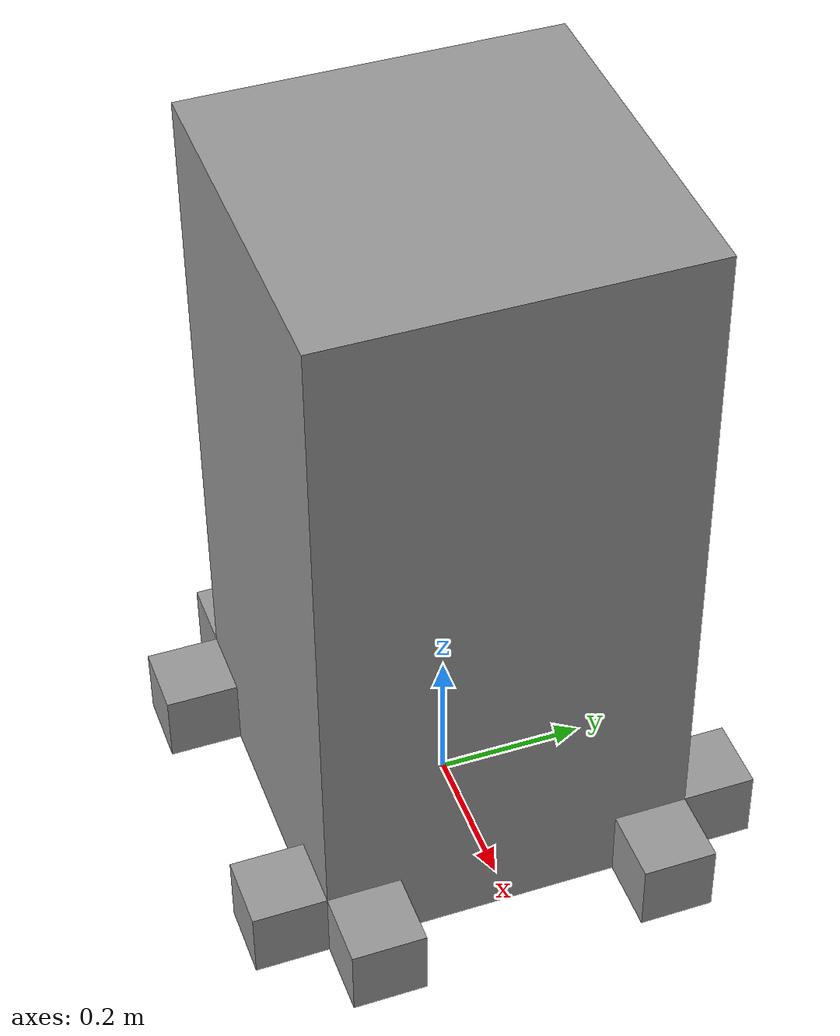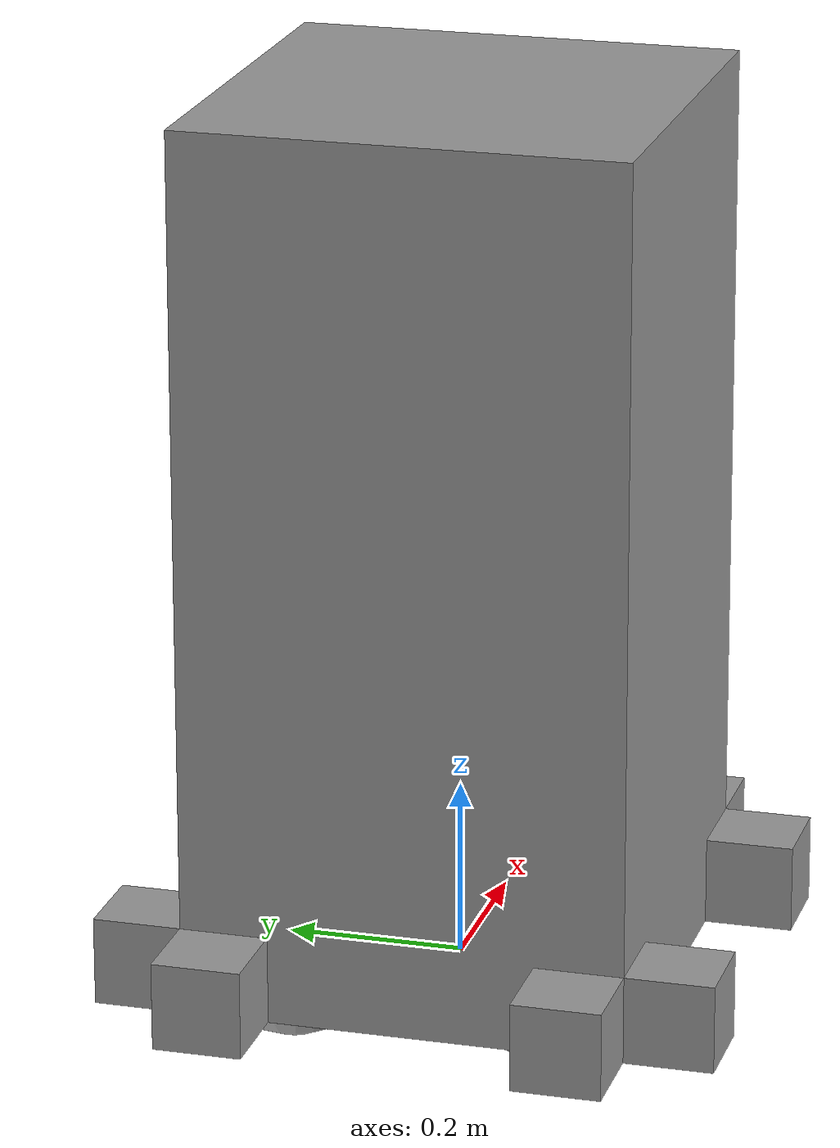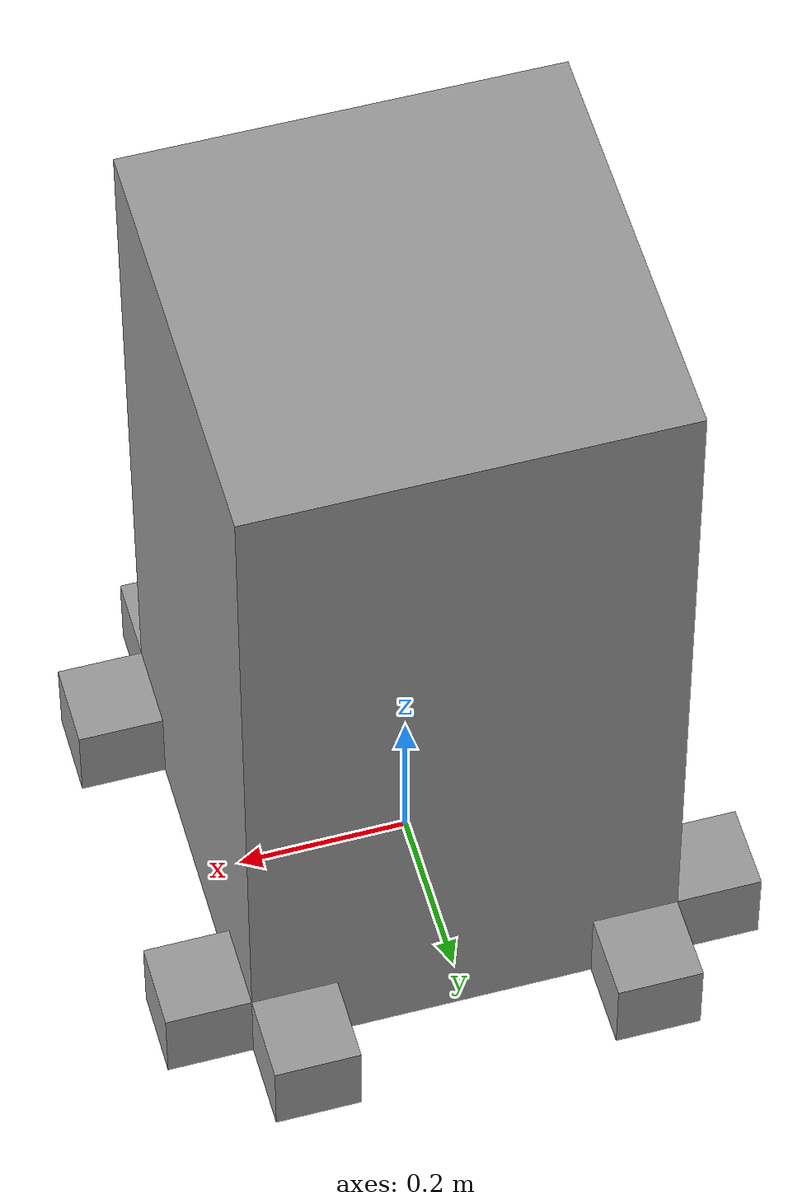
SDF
<?xml version='1.0'?>
<sdf version='1.6'>
  <model name='RSS_Debris'>
    <link name='link_0'>
      <inertial>
        <mass>0.35</mass>
        <inertia>
          <ixx>0.0364583</ixx>
          <ixy>0</ixy>
          <ixz>0</ixz>
          <iyy>0.0364583</iyy>
          <iyz>0</iyz>
          <izz>0.0145833</izz>
        </inertia>
        <pose frame=''>0 0 0 0 -0 0</pose>
      </inertial>
      <pose frame=''>1e-06 -0 0.4 0 -0 0</pose>
      <gravity>1</gravity>
      <self_collide>1</self_collide>
      <kinematic>0</kinematic>
      <enable_wind>0</enable_wind>
      <visual name='visual'>
        <pose frame=''>0 0 0.1 0 -0 0</pose>
        <geometry>
          <box>
            <size>0.5 0.5 1</size>
          </box>
        </geometry>
        <material>
          <lighting>1</lighting>
          <script>
            <uri>file://media/materials/scripts/gazebo.material</uri>
            <name>Gazebo/Grey</name>
          </script>
          <shader type='pixel'>
            <normal_map>__default__</normal_map>
          </shader>
          <ambient>0.3 0.3 0.3 1</ambient>
          <diffuse>0.7 0.7 0.7 1</diffuse>
          <specular>0.01 0.01 0.01 1</specular>
          <emissive>0 0 0 1</emissive>
        </material>
        <transparency>0</transparency>
        <cast_shadows>1</cast_shadows>
      </visual>
      <collision name='collision'>
        <laser_retro>0</laser_retro>
        <max_contacts>10</max_contacts>
        <pose frame=''>0 0 0.1 0 -0 0</pose>
        <geometry>
          <box>
            <size>0.5 0.5 1</size>
          </box>
        </geometry>
        <surface>
          <friction>
            <ode>
              <mu>0</mu>
              <mu2>0</mu2>
              <fdir1>0 0 0</fdir1>
              <slip1>0</slip1>
              <slip2>0</slip2>
            </ode>
            <torsional>
              <coefficient>0.98</coefficient>
              <patch_radius>0</patch_radius>
              <surface_radius>0</surface_radius>
              <use_patch_radius>1</use_patch_radius>
              <ode>
                <slip>0</slip>
              </ode>
            </torsional>
          </friction>
          <bounce>
            <restitution_coefficient>0</restitution_coefficient>
            <threshold>1e+06</threshold>
          </bounce>
          <contact>
            <collide_without_contact>0</collide_without_contact>
            <collide_without_contact_bitmask>1</collide_without_contact_bitmask>
            <collide_bitmask>1</collide_bitmask>
            <ode>
              <soft_cfm>0</soft_cfm>
              <soft_erp>0.2</soft_erp>
              <kp>1e+13</kp>
              <kd>1</kd>
              <max_vel>0.01</max_vel>
              <min_depth>0</min_depth>
            </ode>
            <bullet>
              <split_impulse>1</split_impulse>
              <split_impulse_penetration_threshold>-0.01</split_impulse_penetration_threshold>
              <soft_cfm>0</soft_cfm>
              <soft_erp>0.2</soft_erp>
              <kp>1e+13</kp>
              <kd>1</kd>
            </bullet>
          </contact>
        </surface>
      </collision>
    </link>
    <link name='link_0_0'>
      <inertial>
        <mass>0.35</mass>
        <inertia>
          <ixx>0.0014</ixx>
          <ixy>0</ixy>
          <ixz>0</ixz>
          <iyy>0.0014</iyy>
          <iyz>0</iyz>
          <izz>0.0014</izz>
        </inertia>
        <pose frame=''>0 0 0 0 -0 0</pose>
      </inertial>
      <pose frame=''>-0.150008 -0.150038 0.05 -0 -1e-06 9.3e-05</pose>
      <gravity>1</gravity>
      <self_collide>0</self_collide>
      <kinematic>0</kinematic>
      <enable_wind>0</enable_wind>
      <visual name='visual'>
        <pose frame=''>0 0 0 0 -0 0</pose>
        <geometry>
          <sphere>
            <radius>0.1</radius>
          </sphere>
        </geometry>
        <material>
          <lighting>1</lighting>
          <script>
            <uri>file://media/materials/scripts/gazebo.material</uri>
            <name>Gazebo/Grey</name>
          </script>
          <shader type='pixel'>
            <normal_map>__default__</normal_map>
          </shader>
          <ambient>0.3 0.3 0.3 1</ambient>
          <diffuse>0.7 0.7 0.7 1</diffuse>
          <specular>0.01 0.01 0.01 1</specular>
          <emissive>0 0 0 1</emissive>
        </material>
        <transparency>0</transparency>
        <cast_shadows>1</cast_shadows>
      </visual>
      <collision name='collision'>
        <laser_retro>0</laser_retro>
        <max_contacts>10</max_contacts>
        <pose frame=''>0 0 0 0 -0 0</pose>
        <geometry>
          <sphere>
            <radius>0.1</radius>
          </sphere>
        </geometry>
        <surface>
          <friction>
            <ode>
              <mu>1</mu>
              <mu2>1</mu2>
              <fdir1>0 0 0</fdir1>
              <slip1>0</slip1>
              <slip2>0</slip2>
            </ode>
            <torsional>
              <coefficient>1</coefficient>
              <patch_radius>0</patch_radius>
              <surface_radius>0</surface_radius>
              <use_patch_radius>1</use_patch_radius>
              <ode>
                <slip>0</slip>
              </ode>
            </torsional>
          </friction>
          <bounce>
            <restitution_coefficient>0</restitution_coefficient>
            <threshold>1e+06</threshold>
          </bounce>
          <contact>
            <collide_without_contact>0</collide_without_contact>
            <collide_without_contact_bitmask>1</collide_without_contact_bitmask>
            <collide_bitmask>1</collide_bitmask>
            <ode>
              <soft_cfm>0</soft_cfm>
              <soft_erp>0.2</soft_erp>
              <kp>1e+13</kp>
              <kd>1</kd>
              <max_vel>0.01</max_vel>
              <min_depth>0</min_depth>
            </ode>
            <bullet>
              <split_impulse>1</split_impulse>
              <split_impulse_penetration_threshold>-0.01</split_impulse_penetration_threshold>
              <soft_cfm>0</soft_cfm>
              <soft_erp>0.2</soft_erp>
              <kp>1e+13</kp>
              <kd>1</kd>
            </bullet>
          </contact>
        </surface>
      </collision>
    </link>
    <link name='link_0_0_clone'>
      <inertial>
        <mass>0.35</mass>
        <inertia>
          <ixx>0.0014</ixx>
          <ixy>0</ixy>
          <ixz>0</ixz>
          <iyy>0.0014</iyy>
          <iyz>0</iyz>
          <izz>0.0014</izz>
        </inertia>
        <pose frame=''>0 0 0 0 -0 0</pose>
      </inertial>
      <pose frame=''>-0.150027 0.15 0.05 -0 -2e-06 0.000186</pose>
      <gravity>1</gravity>
      <self_collide>0</self_collide>
      <kinematic>0</kinematic>
      <enable_wind>0</enable_wind>
      <visual name='visual_0'>
        <pose frame=''>0 0 0 0 -0 0</pose>
        <geometry>
          <sphere>
            <radius>0.1</radius>
          </sphere>
        </geometry>
        <material>
          <lighting>1</lighting>
          <script>
            <uri>file://media/materials/scripts/gazebo.material</uri>
            <name>Gazebo/Grey</name>
          </script>
          <shader type='pixel'>
            <normal_map>__default__</normal_map>
          </shader>
          <ambient>0.3 0.3 0.3 1</ambient>
          <diffuse>0.7 0.7 0.7 1</diffuse>
          <specular>0.01 0.01 0.01 1</specular>
          <emissive>0 0 0 1</emissive>
        </material>
        <transparency>0</transparency>
        <cast_shadows>1</cast_shadows>
      </visual>
      <collision name='collision'>
        <laser_retro>0</laser_retro>
        <max_contacts>10</max_contacts>
        <pose frame=''>0 0 0 0 -0 0</pose>
        <geometry>
          <sphere>
            <radius>0.1</radius>
          </sphere>
        </geometry>
        <surface>
          <friction>
            <ode>
              <mu>1</mu>
              <mu2>1</mu2>
              <fdir1>0 0 0</fdir1>
              <slip1>0</slip1>
              <slip2>0</slip2>
            </ode>
            <torsional>
              <coefficient>1</coefficient>
              <patch_radius>0</patch_radius>
              <surface_radius>0</surface_radius>
              <use_patch_radius>1</use_patch_radius>
              <ode>
                <slip>0</slip>
              </ode>
            </torsional>
          </friction>
          <bounce>
            <restitution_coefficient>0</restitution_coefficient>
            <threshold>1e+06</threshold>
          </bounce>
          <contact>
            <collide_without_contact>0</collide_without_contact>
            <collide_without_contact_bitmask>1</collide_without_contact_bitmask>
            <collide_bitmask>1</collide_bitmask>
            <ode>
              <soft_cfm>0</soft_cfm>
              <soft_erp>0.2</soft_erp>
              <kp>1e+13</kp>
              <kd>1</kd>
              <max_vel>0.01</max_vel>
              <min_depth>0</min_depth>
            </ode>
            <bullet>
              <split_impulse>1</split_impulse>
              <split_impulse_penetration_threshold>-0.01</split_impulse_penetration_threshold>
              <soft_cfm>0</soft_cfm>
              <soft_erp>0.2</soft_erp>
              <kp>1e+13</kp>
              <kd>1</kd>
            </bullet>
          </contact>
        </surface>
      </collision>
    </link>
    <link name='link_0_0_clone_0'>
      <inertial>
        <mass>0.35</mass>
        <inertia>
          <ixx>0.0014</ixx>
          <ixy>0</ixy>
          <ixz>0</ixz>
          <iyy>0.0014</iyy>
          <iyz>0</iyz>
          <izz>0.0014</izz>
        </inertia>
        <pose frame=''>0 0 0 0 -0 0</pose>
      </inertial>
      <pose frame=''>0.15003 -0.15 0.05 -0 -2e-06 0.000186</pose>
      <gravity>1</gravity>
      <self_collide>0</self_collide>
      <kinematic>0</kinematic>
      <enable_wind>0</enable_wind>
      <visual name='visual_0'>
        <pose frame=''>0 0 0 0 -0 0</pose>
        <geometry>
          <sphere>
            <radius>0.1</radius>
          </sphere>
        </geometry>
        <material>
          <lighting>1</lighting>
          <script>
            <uri>file://media/materials/scripts/gazebo.material</uri>
            <name>Gazebo/Grey</name>
          </script>
          <shader type='pixel'>
            <normal_map>__default__</normal_map>
          </shader>
          <ambient>0.3 0.3 0.3 1</ambient>
          <diffuse>0.7 0.7 0.7 1</diffuse>
          <specular>0.01 0.01 0.01 1</specular>
          <emissive>0 0 0 1</emissive>
        </material>
        <transparency>0</transparency>
        <cast_shadows>1</cast_shadows>
      </visual>
      <collision name='collision'>
        <laser_retro>0</laser_retro>
        <max_contacts>10</max_contacts>
        <pose frame=''>0 0 0 0 -0 0</pose>
        <geometry>
          <sphere>
            <radius>0.1</radius>
          </sphere>
        </geometry>
        <surface>
          <friction>
            <ode>
              <mu>1</mu>
              <mu2>1</mu2>
              <fdir1>0 0 0</fdir1>
              <slip1>0</slip1>
              <slip2>0</slip2>
            </ode>
            <torsional>
              <coefficient>1</coefficient>
              <patch_radius>0</patch_radius>
              <surface_radius>0</surface_radius>
              <use_patch_radius>1</use_patch_radius>
              <ode>
                <slip>0</slip>
              </ode>
            </torsional>
          </friction>
          <bounce>
            <restitution_coefficient>0</restitution_coefficient>
            <threshold>1e+06</threshold>
          </bounce>
          <contact>
            <collide_without_contact>0</collide_without_contact>
            <collide_without_contact_bitmask>1</collide_without_contact_bitmask>
            <collide_bitmask>1</collide_bitmask>
            <ode>
              <soft_cfm>0</soft_cfm>
              <soft_erp>0.2</soft_erp>
              <kp>1e+13</kp>
              <kd>1</kd>
              <max_vel>0.01</max_vel>
              <min_depth>0</min_depth>
            </ode>
            <bullet>
              <split_impulse>1</split_impulse>
              <split_impulse_penetration_threshold>-0.01</split_impulse_penetration_threshold>
              <soft_cfm>0</soft_cfm>
              <soft_erp>0.2</soft_erp>
              <kp>1e+13</kp>
              <kd>1</kd>
            </bullet>
          </contact>
        </surface>
      </collision>
    </link>
    <link name='link_0_0_clone_1'>
      <inertial>
        <mass>0.35</mass>
        <inertia>
          <ixx>0.0014</ixx>
          <ixy>0</ixy>
          <ixz>0</ixz>
          <iyy>0.0014</iyy>
          <iyz>0</iyz>
          <izz>0.0014</izz>
        </inertia>
        <pose frame=''>0 0 0 0 -0 0</pose>
      </inertial>
      <pose frame=''>0.150002 0.150028 0.05 -0 -2e-06 0.000186</pose>
      <gravity>1</gravity>
      <self_collide>0</self_collide>
      <kinematic>0</kinematic>
      <enable_wind>0</enable_wind>
      <visual name='visual_0'>
        <pose frame=''>0 0 0 0 -0 0</pose>
        <geometry>
          <sphere>
            <radius>0.1</radius>
          </sphere>
        </geometry>
        <material>
          <lighting>1</lighting>
          <script>
            <uri>file://media/materials/scripts/gazebo.material</uri>
            <name>Gazebo/Grey</name>
          </script>
          <shader type='pixel'>
            <normal_map>__default__</normal_map>
          </shader>
          <ambient>0.3 0.3 0.3 1</ambient>
          <diffuse>0.7 0.7 0.7 1</diffuse>
          <specular>0.01 0.01 0.01 1</specular>
          <emissive>0 0 0 1</emissive>
        </material>
        <transparency>0</transparency>
        <cast_shadows>1</cast_shadows>
      </visual>
      <collision name='collision'>
        <laser_retro>0</laser_retro>
        <max_contacts>10</max_contacts>
        <pose frame=''>0 0 0 0 -0 0</pose>
        <geometry>
          <sphere>
            <radius>0.1</radius>
          </sphere>
        </geometry>
        <surface>
          <friction>
            <ode>
              <mu>1</mu>
              <mu2>1</mu2>
              <fdir1>0 0 0</fdir1>
              <slip1>0</slip1>
              <slip2>0</slip2>
            </ode>
            <torsional>
              <coefficient>1</coefficient>
              <patch_radius>0</patch_radius>
              <surface_radius>0</surface_radius>
              <use_patch_radius>1</use_patch_radius>
              <ode>
                <slip>0</slip>
              </ode>
            </torsional>
          </friction>
          <bounce>
            <restitution_coefficient>0</restitution_coefficient>
            <threshold>1e+06</threshold>
          </bounce>
          <contact>
            <collide_without_contact>0</collide_without_contact>
            <collide_without_contact_bitmask>1</collide_without_contact_bitmask>
            <collide_bitmask>1</collide_bitmask>
            <ode>
              <soft_cfm>0</soft_cfm>
              <soft_erp>0.2</soft_erp>
              <kp>1e+13</kp>
              <kd>1</kd>
              <max_vel>0.01</max_vel>
              <min_depth>0</min_depth>
            </ode>
            <bullet>
              <split_impulse>1</split_impulse>
              <split_impulse_penetration_threshold>-0.01</split_impulse_penetration_threshold>
              <soft_cfm>0</soft_cfm>
              <soft_erp>0.2</soft_erp>
              <kp>1e+13</kp>
              <kd>1</kd>
            </bullet>
          </contact>
        </surface>
      </collision>
    </link>
    <link name='link_1'>
      <inertial>
        <mass>0.35</mass>
        <inertia>
          <ixx>0.00058333</ixx>
          <ixy>0</ixy>
          <ixz>0</ixz>
          <iyy>0.00058333</iyy>
          <iyz>0</iyz>
          <izz>0.00058333</izz>
        </inertia>
        <pose frame=''>0 0 0 0 -0 0</pose>
      </inertial>
      <pose frame=''>-0.199999 0.299999 -0.05 0 -0 0</pose>
      <gravity>1</gravity>
      <self_collide>1</self_collide>
      <kinematic>0</kinematic>
      <enable_wind>0</enable_wind>
      <visual name='visual'>
        <pose frame=''>0 0 0.1 0 -0 0</pose>
        <geometry>
          <box>
            <size>0.1 0.1 0.1</size>
          </box>
        </geometry>
        <material>
          <lighting>1</lighting>
          <script>
            <uri>file://media/materials/scripts/gazebo.material</uri>
            <name>Gazebo/Grey</name>
          </script>
          <shader type='pixel'>
            <normal_map>__default__</normal_map>
          </shader>
          <ambient>0.3 0.3 0.3 1</ambient>
          <diffuse>0.7 0.7 0.7 1</diffuse>
          <specular>0.01 0.01 0.01 1</specular>
          <emissive>0 0 0 1</emissive>
        </material>
        <transparency>0</transparency>
        <cast_shadows>1</cast_shadows>
      </visual>
      <collision name='collision'>
        <laser_retro>0</laser_retro>
        <max_contacts>10</max_contacts>
        <pose frame=''>0 0 0.1 0 -0 0</pose>
        <geometry>
          <box>
            <size>0.1 0.1 0.1</size>
          </box>
        </geometry>
        <surface>
          <friction>
            <ode>
              <mu>0</mu>
              <mu2>1</mu2>
              <fdir1>0 0 0</fdir1>
              <slip1>0</slip1>
              <slip2>0</slip2>
            </ode>
            <torsional>
              <coefficient>1</coefficient>
              <patch_radius>0</patch_radius>
              <surface_radius>0</surface_radius>
              <use_patch_radius>1</use_patch_radius>
              <ode>
                <slip>0</slip>
              </ode>
            </torsional>
          </friction>
          <bounce>
            <restitution_coefficient>0</restitution_coefficient>
            <threshold>1e+06</threshold>
          </bounce>
          <contact>
            <collide_without_contact>0</collide_without_contact>
            <collide_without_contact_bitmask>1</collide_without_contact_bitmask>
            <collide_bitmask>1</collide_bitmask>
            <ode>
              <soft_cfm>0</soft_cfm>
              <soft_erp>0.2</soft_erp>
              <kp>1e+13</kp>
              <kd>1</kd>
              <max_vel>0.01</max_vel>
              <min_depth>0</min_depth>
            </ode>
            <bullet>
              <split_impulse>1</split_impulse>
              <split_impulse_penetration_threshold>-0.01</split_impulse_penetration_threshold>
              <soft_cfm>0</soft_cfm>
              <soft_erp>0.2</soft_erp>
              <kp>1e+13</kp>
              <kd>1</kd>
            </bullet>
          </contact>
        </surface>
      </collision>
    </link>
    <link name='link_1_clone'>
      <inertial>
        <mass>0.35</mass>
        <inertia>
          <ixx>0.00058333</ixx>
          <ixy>0</ixy>
          <ixz>0</ixz>
          <iyy>0.00058333</iyy>
          <iyz>0</iyz>
          <izz>0.00058333</izz>
        </inertia>
        <pose frame=''>0 0 0 0 -0 0</pose>
      </inertial>
      <pose frame=''>0.199999 0.3 -0.05 0 -0 0</pose>
      <gravity>1</gravity>
      <self_collide>1</self_collide>
      <kinematic>0</kinematic>
      <enable_wind>0</enable_wind>
      <visual name='visual'>
        <pose frame=''>0 0 0.1 0 -0 0</pose>
        <geometry>
          <box>
            <size>0.1 0.1 0.1</size>
          </box>
        </geometry>
        <material>
          <lighting>1</lighting>
          <script>
            <uri>file://media/materials/scripts/gazebo.material</uri>
            <name>Gazebo/Grey</name>
          </script>
          <shader type='pixel'>
            <normal_map>__default__</normal_map>
          </shader>
          <ambient>0.3 0.3 0.3 1</ambient>
          <diffuse>0.7 0.7 0.7 1</diffuse>
          <specular>0.01 0.01 0.01 1</specular>
          <emissive>0 0 0 1</emissive>
        </material>
        <transparency>0</transparency>
        <cast_shadows>1</cast_shadows>
      </visual>
      <collision name='collision'>
        <laser_retro>0</laser_retro>
        <max_contacts>10</max_contacts>
        <pose frame=''>0 0 0.1 0 -0 0</pose>
        <geometry>
          <box>
            <size>0.1 0.1 0.1</size>
          </box>
        </geometry>
        <surface>
          <friction>
            <ode>
              <mu>0</mu>
              <mu2>0</mu2>
              <fdir1>0 0 0</fdir1>
              <slip1>0</slip1>
              <slip2>0</slip2>
            </ode>
            <torsional>
              <coefficient>1</coefficient>
              <patch_radius>0</patch_radius>
              <surface_radius>0</surface_radius>
              <use_patch_radius>1</use_patch_radius>
              <ode>
                <slip>0</slip>
              </ode>
            </torsional>
          </friction>
          <bounce>
            <restitution_coefficient>0</restitution_coefficient>
            <threshold>1e+06</threshold>
          </bounce>
          <contact>
            <collide_without_contact>0</collide_without_contact>
            <collide_without_contact_bitmask>1</collide_without_contact_bitmask>
            <collide_bitmask>1</collide_bitmask>
            <ode>
              <soft_cfm>0</soft_cfm>
              <soft_erp>0.2</soft_erp>
              <kp>1e+13</kp>
              <kd>1</kd>
              <max_vel>0.01</max_vel>
              <min_depth>0</min_depth>
            </ode>
            <bullet>
              <split_impulse>1</split_impulse>
              <split_impulse_penetration_threshold>-0.01</split_impulse_penetration_threshold>
              <soft_cfm>0</soft_cfm>
              <soft_erp>0.2</soft_erp>
              <kp>1e+13</kp>
              <kd>1</kd>
            </bullet>
          </contact>
        </surface>
      </collision>
    </link>
    <link name='link_1_clone_0'>
      <inertial>
        <mass>0.35</mass>
        <inertia>
          <ixx>0.00058333</ixx>
          <ixy>0</ixy>
          <ixz>0</ixz>
          <iyy>0.00058333</iyy>
          <iyz>0</iyz>
          <izz>0.00058333</izz>
        </inertia>
        <pose frame=''>0 0 0 0 -0 0</pose>
      </inertial>
      <pose frame=''>-0.299999 0.2 -0.05 0 -0 0</pose>
      <gravity>1</gravity>
      <self_collide>1</self_collide>
      <kinematic>0</kinematic>
      <enable_wind>0</enable_wind>
      <visual name='visual'>
        <pose frame=''>0 0 0.1 0 -0 0</pose>
        <geometry>
          <box>
            <size>0.1 0.1 0.1</size>
          </box>
        </geometry>
        <material>
          <lighting>1</lighting>
          <script>
            <uri>file://media/materials/scripts/gazebo.material</uri>
            <name>Gazebo/Grey</name>
          </script>
          <shader type='pixel'>
            <normal_map>__default__</normal_map>
          </shader>
          <ambient>0.3 0.3 0.3 1</ambient>
          <diffuse>0.7 0.7 0.7 1</diffuse>
          <specular>0.01 0.01 0.01 1</specular>
          <emissive>0 0 0 1</emissive>
        </material>
        <transparency>0</transparency>
        <cast_shadows>1</cast_shadows>
      </visual>
      <collision name='collision'>
        <laser_retro>0</laser_retro>
        <max_contacts>10</max_contacts>
        <pose frame=''>0 0 0.1 0 -0 0</pose>
        <geometry>
          <box>
            <size>0.1 0.1 0.1</size>
          </box>
        </geometry>
        <surface>
          <friction>
            <ode>
              <mu>0</mu>
              <mu2>0</mu2>
              <fdir1>0 0 0</fdir1>
              <slip1>0</slip1>
              <slip2>0</slip2>
            </ode>
            <torsional>
              <coefficient>1</coefficient>
              <patch_radius>0</patch_radius>
              <surface_radius>0</surface_radius>
              <use_patch_radius>1</use_patch_radius>
              <ode>
                <slip>0</slip>
              </ode>
            </torsional>
          </friction>
          <bounce>
            <restitution_coefficient>0</restitution_coefficient>
            <threshold>1e+06</threshold>
          </bounce>
          <contact>
            <collide_without_contact>0</collide_without_contact>
            <collide_without_contact_bitmask>1</collide_without_contact_bitmask>
            <collide_bitmask>1</collide_bitmask>
            <ode>
              <soft_cfm>0</soft_cfm>
              <soft_erp>0.2</soft_erp>
              <kp>1e+13</kp>
              <kd>1</kd>
              <max_vel>0.01</max_vel>
              <min_depth>0</min_depth>
            </ode>
            <bullet>
              <split_impulse>1</split_impulse>
              <split_impulse_penetration_threshold>-0.01</split_impulse_penetration_threshold>
              <soft_cfm>0</soft_cfm>
              <soft_erp>0.2</soft_erp>
              <kp>1e+13</kp>
              <kd>1</kd>
            </bullet>
          </contact>
        </surface>
      </collision>
    </link>
    <link name='link_1_clone_1'>
      <inertial>
        <mass>0.35</mass>
        <inertia>
          <ixx>0.00058333</ixx>
          <ixy>0</ixy>
          <ixz>0</ixz>
          <iyy>0.00058333</iyy>
          <iyz>0</iyz>
          <izz>0.00058333</izz>
        </inertia>
        <pose frame=''>0 0 0 0 -0 0</pose>
      </inertial>
      <pose frame=''>-0.299999 -0.2 -0.05 0 -0 0</pose>
      <gravity>1</gravity>
      <self_collide>1</self_collide>
      <kinematic>0</kinematic>
      <enable_wind>0</enable_wind>
      <visual name='visual'>
        <pose frame=''>0 0 0.1 0 -0 0</pose>
        <geometry>
          <box>
            <size>0.1 0.1 0.1</size>
          </box>
        </geometry>
        <material>
          <lighting>1</lighting>
          <script>
            <uri>file://media/materials/scripts/gazebo.material</uri>
            <name>Gazebo/Grey</name>
          </script>
          <shader type='pixel'>
            <normal_map>__default__</normal_map>
          </shader>
          <ambient>0.3 0.3 0.3 1</ambient>
          <diffuse>0.7 0.7 0.7 1</diffuse>
          <specular>0.01 0.01 0.01 1</specular>
          <emissive>0 0 0 1</emissive>
        </material>
        <transparency>0</transparency>
        <cast_shadows>1</cast_shadows>
      </visual>
      <collision name='collision'>
        <laser_retro>0</laser_retro>
        <max_contacts>10</max_contacts>
        <pose frame=''>0 0 0.1 0 -0 0</pose>
        <geometry>
          <box>
            <size>0.1 0.1 0.1</size>
          </box>
        </geometry>
        <surface>
          <friction>
            <ode>
              <mu>0</mu>
              <mu2>0</mu2>
              <fdir1>0 0 0</fdir1>
              <slip1>0</slip1>
              <slip2>0</slip2>
            </ode>
            <torsional>
              <coefficient>1</coefficient>
              <patch_radius>0</patch_radius>
              <surface_radius>0</surface_radius>
              <use_patch_radius>1</use_patch_radius>
              <ode>
                <slip>0</slip>
              </ode>
            </torsional>
          </friction>
          <bounce>
            <restitution_coefficient>0</restitution_coefficient>
            <threshold>1e+06</threshold>
          </bounce>
          <contact>
            <collide_without_contact>0</collide_without_contact>
            <collide_without_contact_bitmask>1</collide_without_contact_bitmask>
            <collide_bitmask>1</collide_bitmask>
            <ode>
              <soft_cfm>0</soft_cfm>
              <soft_erp>0.2</soft_erp>
              <kp>1e+13</kp>
              <kd>1</kd>
              <max_vel>0.01</max_vel>
              <min_depth>0</min_depth>
            </ode>
            <bullet>
              <split_impulse>1</split_impulse>
              <split_impulse_penetration_threshold>-0.01</split_impulse_penetration_threshold>
              <soft_cfm>0</soft_cfm>
              <soft_erp>0.2</soft_erp>
              <kp>1e+13</kp>
              <kd>1</kd>
            </bullet>
          </contact>
        </surface>
      </collision>
    </link>
    <link name='link_1_clone_2'>
      <inertial>
        <mass>0.35</mass>
        <inertia>
          <ixx>0.00058333</ixx>
          <ixy>0</ixy>
          <ixz>0</ixz>
          <iyy>0.00058333</iyy>
          <iyz>0</iyz>
          <izz>0.00058333</izz>
        </inertia>
        <pose frame=''>0 0 0 0 -0 0</pose>
      </inertial>
      <pose frame=''>0.2 -0.3 -0.05 0 -0 0</pose>
      <gravity>1</gravity>
      <self_collide>1</self_collide>
      <kinematic>0</kinematic>
      <enable_wind>0</enable_wind>
      <visual name='visual'>
        <pose frame=''>0 0 0.1 0 -0 0</pose>
        <geometry>
          <box>
            <size>0.1 0.1 0.1</size>
          </box>
        </geometry>
        <material>
          <lighting>1</lighting>
          <script>
            <uri>file://media/materials/scripts/gazebo.material</uri>
            <name>Gazebo/Grey</name>
          </script>
          <shader type='pixel'>
            <normal_map>__default__</normal_map>
          </shader>
          <ambient>0.3 0.3 0.3 1</ambient>
          <diffuse>0.7 0.7 0.7 1</diffuse>
          <specular>0.01 0.01 0.01 1</specular>
          <emissive>0 0 0 1</emissive>
        </material>
        <transparency>0</transparency>
        <cast_shadows>1</cast_shadows>
      </visual>
      <collision name='collision'>
        <laser_retro>0</laser_retro>
        <max_contacts>10</max_contacts>
        <pose frame=''>0 0 0.1 0 -0 0</pose>
        <geometry>
          <box>
            <size>0.1 0.1 0.1</size>
          </box>
        </geometry>
        <surface>
          <friction>
            <ode>
              <mu>0</mu>
              <mu2>0</mu2>
              <fdir1>0 0 0</fdir1>
              <slip1>0</slip1>
              <slip2>0</slip2>
            </ode>
            <torsional>
              <coefficient>1</coefficient>
              <patch_radius>0</patch_radius>
              <surface_radius>0</surface_radius>
              <use_patch_radius>1</use_patch_radius>
              <ode>
                <slip>0</slip>
              </ode>
            </torsional>
          </friction>
          <bounce>
            <restitution_coefficient>0</restitution_coefficient>
            <threshold>1e+06</threshold>
          </bounce>
          <contact>
            <collide_without_contact>0</collide_without_contact>
            <collide_without_contact_bitmask>1</collide_without_contact_bitmask>
            <collide_bitmask>1</collide_bitmask>
            <ode>
              <soft_cfm>0</soft_cfm>
              <soft_erp>0.2</soft_erp>
              <kp>1e+13</kp>
              <kd>1</kd>
              <max_vel>0.01</max_vel>
              <min_depth>0</min_depth>
            </ode>
            <bullet>
              <split_impulse>1</split_impulse>
              <split_impulse_penetration_threshold>-0.01</split_impulse_penetration_threshold>
              <soft_cfm>0</soft_cfm>
              <soft_erp>0.2</soft_erp>
              <kp>1e+13</kp>
              <kd>1</kd>
            </bullet>
          </contact>
        </surface>
      </collision>
    </link>
    <link name='link_1_clone_3'>
      <inertial>
        <mass>0.35</mass>
        <inertia>
          <ixx>0.00058333</ixx>
          <ixy>0</ixy>
          <ixz>0</ixz>
          <iyy>0.00058333</iyy>
          <iyz>0</iyz>
          <izz>0.00058333</izz>
        </inertia>
        <pose frame=''>0 0 0 0 -0 0</pose>
      </inertial>
      <pose frame=''>-0.2 -0.3 -0.05 0 -0 0</pose>
      <gravity>1</gravity>
      <self_collide>1</self_collide>
      <kinematic>0</kinematic>
      <enable_wind>0</enable_wind>
      <visual name='visual'>
        <pose frame=''>0 0 0.1 0 -0 0</pose>
        <geometry>
          <box>
            <size>0.1 0.1 0.1</size>
          </box>
        </geometry>
        <material>
          <lighting>1</lighting>
          <script>
            <uri>file://media/materials/scripts/gazebo.material</uri>
            <name>Gazebo/Grey</name>
          </script>
          <shader type='pixel'>
            <normal_map>__default__</normal_map>
          </shader>
          <ambient>0.3 0.3 0.3 1</ambient>
          <diffuse>0.7 0.7 0.7 1</diffuse>
          <specular>0.01 0.01 0.01 1</specular>
          <emissive>0 0 0 1</emissive>
        </material>
        <transparency>0</transparency>
        <cast_shadows>1</cast_shadows>
      </visual>
      <collision name='collision'>
        <laser_retro>0</laser_retro>
        <max_contacts>10</max_contacts>
        <pose frame=''>0 0 0.1 0 -0 0</pose>
        <geometry>
          <box>
            <size>0.1 0.1 0.1</size>
          </box>
        </geometry>
        <surface>
          <friction>
            <ode>
              <mu>0</mu>
              <mu2>0</mu2>
              <fdir1>0 0 0</fdir1>
              <slip1>0</slip1>
              <slip2>0</slip2>
            </ode>
            <torsional>
              <coefficient>1</coefficient>
              <patch_radius>0</patch_radius>
              <surface_radius>0</surface_radius>
              <use_patch_radius>1</use_patch_radius>
              <ode>
                <slip>0</slip>
              </ode>
            </torsional>
          </friction>
          <bounce>
            <restitution_coefficient>0</restitution_coefficient>
            <threshold>1e+06</threshold>
          </bounce>
          <contact>
            <collide_without_contact>0</collide_without_contact>
            <collide_without_contact_bitmask>1</collide_without_contact_bitmask>
            <collide_bitmask>1</collide_bitmask>
            <ode>
              <soft_cfm>0</soft_cfm>
              <soft_erp>0.2</soft_erp>
              <kp>1e+13</kp>
              <kd>1</kd>
              <max_vel>0.01</max_vel>
              <min_depth>0</min_depth>
            </ode>
            <bullet>
              <split_impulse>1</split_impulse>
              <split_impulse_penetration_threshold>-0.01</split_impulse_penetration_threshold>
              <soft_cfm>0</soft_cfm>
              <soft_erp>0.2</soft_erp>
              <kp>1e+13</kp>
              <kd>1</kd>
            </bullet>
          </contact>
        </surface>
      </collision>
    </link>
    <link name='link_1_clone_4'>
      <inertial>
        <mass>0.35</mass>
        <inertia>
          <ixx>0.00058333</ixx>
          <ixy>0</ixy>
          <ixz>0</ixz>
          <iyy>0.00058333</iyy>
          <iyz>0</iyz>
          <izz>0.00058333</izz>
        </inertia>
        <pose frame=''>0 0 0 0 -0 0</pose>
      </inertial>
      <pose frame=''>0.3 -0.200001 -0.05 0 -0 0</pose>
      <gravity>1</gravity>
      <self_collide>1</self_collide>
      <kinematic>0</kinematic>
      <enable_wind>0</enable_wind>
      <visual name='visual'>
        <pose frame=''>0 0 0.1 0 -0 0</pose>
        <geometry>
          <box>
            <size>0.1 0.1 0.1</size>
          </box>
        </geometry>
        <material>
          <lighting>1</lighting>
          <script>
            <uri>file://media/materials/scripts/gazebo.material</uri>
            <name>Gazebo/Grey</name>
          </script>
          <shader type='pixel'>
            <normal_map>__default__</normal_map>
          </shader>
          <ambient>0.3 0.3 0.3 1</ambient>
          <diffuse>0.7 0.7 0.7 1</diffuse>
          <specular>0.01 0.01 0.01 1</specular>
          <emissive>0 0 0 1</emissive>
        </material>
        <transparency>0</transparency>
        <cast_shadows>1</cast_shadows>
      </visual>
      <collision name='collision'>
        <laser_retro>0</laser_retro>
        <max_contacts>10</max_contacts>
        <pose frame=''>0 0 0.1 0 -0 0</pose>
        <geometry>
          <box>
            <size>0.1 0.1 0.1</size>
          </box>
        </geometry>
        <surface>
          <friction>
            <ode>
              <mu>0</mu>
              <mu2>0</mu2>
              <fdir1>0 0 0</fdir1>
              <slip1>0</slip1>
              <slip2>0</slip2>
            </ode>
            <torsional>
              <coefficient>1</coefficient>
              <patch_radius>0</patch_radius>
              <surface_radius>0</surface_radius>
              <use_patch_radius>1</use_patch_radius>
              <ode>
                <slip>0</slip>
              </ode>
            </torsional>
          </friction>
          <bounce>
            <restitution_coefficient>0</restitution_coefficient>
            <threshold>1e+06</threshold>
          </bounce>
          <contact>
            <collide_without_contact>0</collide_without_contact>
            <collide_without_contact_bitmask>1</collide_without_contact_bitmask>
            <collide_bitmask>1</collide_bitmask>
            <ode>
              <soft_cfm>0</soft_cfm>
              <soft_erp>0.2</soft_erp>
              <kp>1e+13</kp>
              <kd>1</kd>
              <max_vel>0.01</max_vel>
              <min_depth>0</min_depth>
            </ode>
            <bullet>
              <split_impulse>1</split_impulse>
              <split_impulse_penetration_threshold>-0.01</split_impulse_penetration_threshold>
              <soft_cfm>0</soft_cfm>
              <soft_erp>0.2</soft_erp>
              <kp>1e+13</kp>
              <kd>1</kd>
            </bullet>
          </contact>
        </surface>
      </collision>
    </link>
    <link name='link_1_clone_5'>
      <inertial>
        <mass>0.35</mass>
        <inertia>
          <ixx>0.00058333</ixx>
          <ixy>0</ixy>
          <ixz>0</ixz>
          <iyy>0.00058333</iyy>
          <iyz>0</iyz>
          <izz>0.00058333</izz>
        </inertia>
        <pose frame=''>0 0 0 0 -0 0</pose>
      </inertial>
      <pose frame=''>0.3 0.199999 -0.05 0 -0 0</pose>
      <gravity>1</gravity>
      <self_collide>1</self_collide>
      <kinematic>0</kinematic>
      <enable_wind>0</enable_wind>
      <visual name='visual'>
        <pose frame=''>0 0 0.1 0 -0 0</pose>
        <geometry>
          <box>
            <size>0.1 0.1 0.1</size>
          </box>
        </geometry>
        <material>
          <lighting>1</lighting>
          <script>
            <uri>file://media/materials/scripts/gazebo.material</uri>
            <name>Gazebo/Grey</name>
          </script>
          <shader type='pixel'>
            <normal_map>__default__</normal_map>
          </shader>
          <ambient>0.3 0.3 0.3 1</ambient>
          <diffuse>0.7 0.7 0.7 1</diffuse>
          <specular>0.01 0.01 0.01 1</specular>
          <emissive>0 0 0 1</emissive>
        </material>
        <transparency>0</transparency>
        <cast_shadows>1</cast_shadows>
      </visual>
      <collision name='collision'>
        <laser_retro>0</laser_retro>
        <max_contacts>10</max_contacts>
        <pose frame=''>0 0 0.1 0 -0 0</pose>
        <geometry>
          <box>
            <size>0.1 0.1 0.1</size>
          </box>
        </geometry>
        <surface>
          <friction>
            <ode>
              <mu>0</mu>
              <mu2>0</mu2>
              <fdir1>0 0 0</fdir1>
              <slip1>0</slip1>
              <slip2>0</slip2>
            </ode>
            <torsional>
              <coefficient>1</coefficient>
              <patch_radius>0</patch_radius>
              <surface_radius>0</surface_radius>
              <use_patch_radius>1</use_patch_radius>
              <ode>
                <slip>0</slip>
              </ode>
            </torsional>
          </friction>
          <bounce>
            <restitution_coefficient>0</restitution_coefficient>
            <threshold>1e+06</threshold>
          </bounce>
          <contact>
            <collide_without_contact>0</collide_without_contact>
            <collide_without_contact_bitmask>1</collide_without_contact_bitmask>
            <collide_bitmask>1</collide_bitmask>
            <ode>
              <soft_cfm>0</soft_cfm>
              <soft_erp>0.2</soft_erp>
              <kp>1e+13</kp>
              <kd>1</kd>
              <max_vel>0.01</max_vel>
              <min_depth>0</min_depth>
            </ode>
            <bullet>
              <split_impulse>1</split_impulse>
              <split_impulse_penetration_threshold>-0.01</split_impulse_penetration_threshold>
              <soft_cfm>0</soft_cfm>
              <soft_erp>0.2</soft_erp>
              <kp>1e+13</kp>
              <kd>1</kd>
            </bullet>
          </contact>
        </surface>
      </collision>
    </link>
    <joint name='link_0_JOINT_0_0' type='revolute'>
      <parent>link_0</parent>
      <child>link_0_0</child>
      <pose frame=''>0 0 0 0 -0 0</pose>
      <axis>
        <xyz>1 0 0</xyz>
        <use_parent_model_frame>0</use_parent_model_frame>
        <limit>
          <lower>-1.79769e+308</lower>
          <upper>1.79769e+308</upper>
          <effort>-1</effort>
          <velocity>-1</velocity>
        </limit>
        <dynamics>
          <spring_reference>0</spring_reference>
          <spring_stiffness>0</spring_stiffness>
          <damping>0</damping>
          <friction>0</friction>
        </dynamics>
      </axis>
      <physics>
        <ode>
          <limit>
            <cfm>0</cfm>
            <erp>0.2</erp>
          </limit>
          <suspension>
            <cfm>0</cfm>
            <erp>0.2</erp>
          </suspension>
        </ode>
      </physics>
    </joint>
    <joint name='link_0_JOINT_0' type='fixed'>
      <parent>link_0</parent>
      <child>link_1</child>
      <pose frame=''>0 0 0 0 -0 0</pose>
      <physics>
        <ode>
          <limit>
            <cfm>0</cfm>
            <erp>0.2</erp>
          </limit>
          <suspension>
            <cfm>0</cfm>
            <erp>0.2</erp>
          </suspension>
        </ode>
      </physics>
    </joint>
    <joint name='link_0_JOINT_1_0' type='revolute'>
      <parent>link_0</parent>
      <child>link_0_0_clone</child>
      <pose frame=''>0 0 0 0 -0 0</pose>
      <axis>
        <xyz>1 0 0</xyz>
        <use_parent_model_frame>0</use_parent_model_frame>
        <limit>
          <lower>-1.79769e+308</lower>
          <upper>1.79769e+308</upper>
          <effort>-1</effort>
          <velocity>-1</velocity>
        </limit>
        <dynamics>
          <spring_reference>0</spring_reference>
          <spring_stiffness>0</spring_stiffness>
          <damping>0</damping>
          <friction>0</friction>
        </dynamics>
      </axis>
      <physics>
        <ode>
          <limit>
            <cfm>0</cfm>
            <erp>0.2</erp>
          </limit>
          <suspension>
            <cfm>0</cfm>
            <erp>0.2</erp>
          </suspension>
        </ode>
      </physics>
    </joint>
    <joint name='link_0_JOINT_1' type='fixed'>
      <parent>link_0</parent>
      <child>link_1_clone</child>
      <pose frame=''>0 0 0 0 -0 0</pose>
      <physics>
        <ode>
          <limit>
            <cfm>0</cfm>
            <erp>0.2</erp>
          </limit>
          <suspension>
            <cfm>0</cfm>
            <erp>0.2</erp>
          </suspension>
        </ode>
      </physics>
    </joint>
    <joint name='link_0_JOINT_2_0' type='revolute'>
      <parent>link_0</parent>
      <child>link_0_0_clone_0</child>
      <pose frame=''>0 0 0 0 -0 0</pose>
      <axis>
        <xyz>1 0 0</xyz>
        <use_parent_model_frame>0</use_parent_model_frame>
        <limit>
          <lower>-1.79769e+308</lower>
          <upper>1.79769e+308</upper>
          <effort>-1</effort>
          <velocity>-1</velocity>
        </limit>
        <dynamics>
          <spring_reference>0</spring_reference>
          <spring_stiffness>0</spring_stiffness>
          <damping>0</damping>
          <friction>0</friction>
        </dynamics>
      </axis>
      <physics>
        <ode>
          <limit>
            <cfm>0</cfm>
            <erp>0.2</erp>
          </limit>
          <suspension>
            <cfm>0</cfm>
            <erp>0.2</erp>
          </suspension>
        </ode>
      </physics>
    </joint>
    <joint name='link_0_JOINT_2' type='fixed'>
      <parent>link_0</parent>
      <child>link_1_clone_0</child>
      <pose frame=''>0 0 0 0 -0 0</pose>
      <physics>
        <ode>
          <limit>
            <cfm>0</cfm>
            <erp>0.2</erp>
          </limit>
          <suspension>
            <cfm>0</cfm>
            <erp>0.2</erp>
          </suspension>
        </ode>
      </physics>
    </joint>
    <joint name='link_0_JOINT_3_0' type='revolute'>
      <parent>link_0</parent>
      <child>link_0_0_clone_1</child>
      <pose frame=''>0 0 0 0 -0 0</pose>
      <axis>
        <xyz>1 0 0</xyz>
        <use_parent_model_frame>0</use_parent_model_frame>
        <limit>
          <lower>-1.79769e+308</lower>
          <upper>1.79769e+308</upper>
          <effort>-1</effort>
          <velocity>-1</velocity>
        </limit>
        <dynamics>
          <spring_reference>0</spring_reference>
          <spring_stiffness>0</spring_stiffness>
          <damping>0</damping>
          <friction>0</friction>
        </dynamics>
      </axis>
      <physics>
        <ode>
          <limit>
            <cfm>0</cfm>
            <erp>0.2</erp>
          </limit>
          <suspension>
            <cfm>0</cfm>
            <erp>0.2</erp>
          </suspension>
        </ode>
      </physics>
    </joint>
    <joint name='link_0_JOINT_3' type='fixed'>
      <parent>link_0</parent>
      <child>link_1_clone_1</child>
      <pose frame=''>0 0 0 0 -0 0</pose>
      <physics>
        <ode>
          <limit>
            <cfm>0</cfm>
            <erp>0.2</erp>
          </limit>
          <suspension>
            <cfm>0</cfm>
            <erp>0.2</erp>
          </suspension>
        </ode>
      </physics>
    </joint>
    <joint name='link_0_JOINT_4' type='fixed'>
      <parent>link_0</parent>
      <child>link_1_clone_2</child>
      <pose frame=''>0 0 0 0 -0 0</pose>
      <physics>
        <ode>
          <limit>
            <cfm>0</cfm>
            <erp>0.2</erp>
          </limit>
          <suspension>
            <cfm>0</cfm>
            <erp>0.2</erp>
          </suspension>
        </ode>
      </physics>
    </joint>
    <joint name='link_0_JOINT_5' type='fixed'>
      <parent>link_0</parent>
      <child>link_1_clone_3</child>
      <pose frame=''>0 0 0 0 -0 0</pose>
      <physics>
        <ode>
          <limit>
            <cfm>0</cfm>
            <erp>0.2</erp>
          </limit>
          <suspension>
            <cfm>0</cfm>
            <erp>0.2</erp>
          </suspension>
        </ode>
      </physics>
    </joint>
    <joint name='link_0_JOINT_6' type='fixed'>
      <parent>link_0</parent>
      <child>link_1_clone_4</child>
      <pose frame=''>0 0 0 0 -0 0</pose>
      <physics>
        <ode>
          <limit>
            <cfm>0</cfm>
            <erp>0.2</erp>
          </limit>
          <suspension>
            <cfm>0</cfm>
            <erp>0.2</erp>
          </suspension>
        </ode>
      </physics>
    </joint>
    <joint name='link_0_JOINT_7' type='fixed'>
      <parent>link_0</parent>
      <child>link_1_clone_5</child>
      <pose frame=''>0 0 0 0 -0 0</pose>
      <physics>
        <ode>
          <limit>
            <cfm>0</cfm>
            <erp>0.2</erp>
          </limit>
          <suspension>
            <cfm>0</cfm>
            <erp>0.2</erp>
          </suspension>
        </ode>
      </physics>
    </joint>
    <static>0</static>
    <allow_auto_disable>1</allow_auto_disable>
    <plugin name='Debris_IMU_plugin' filename='libDebris_IMU_plugin.so'/>
  </model>
</sdf>
